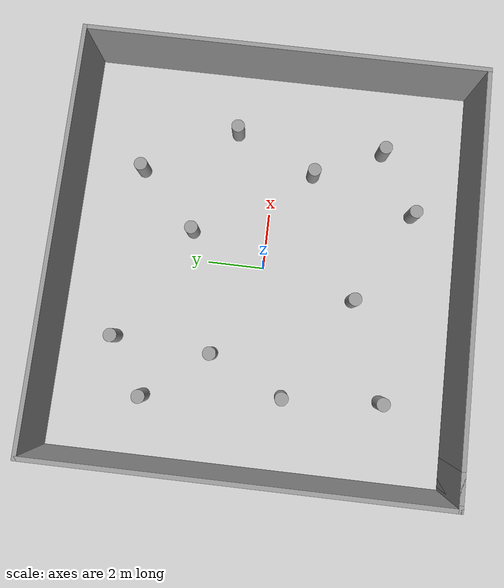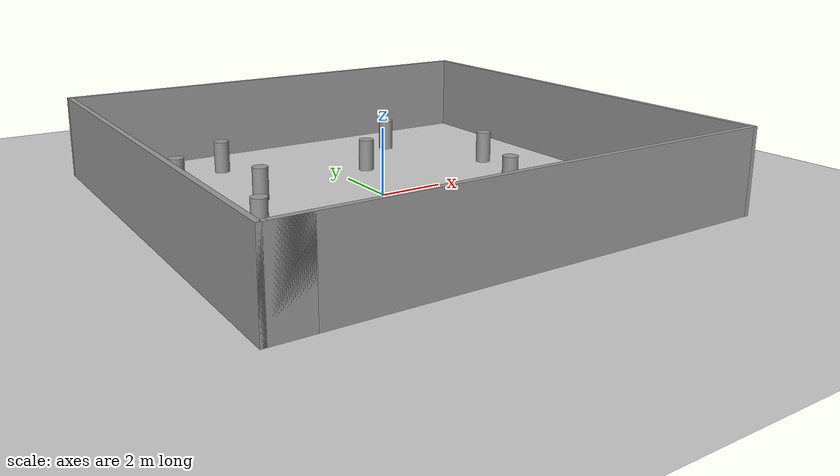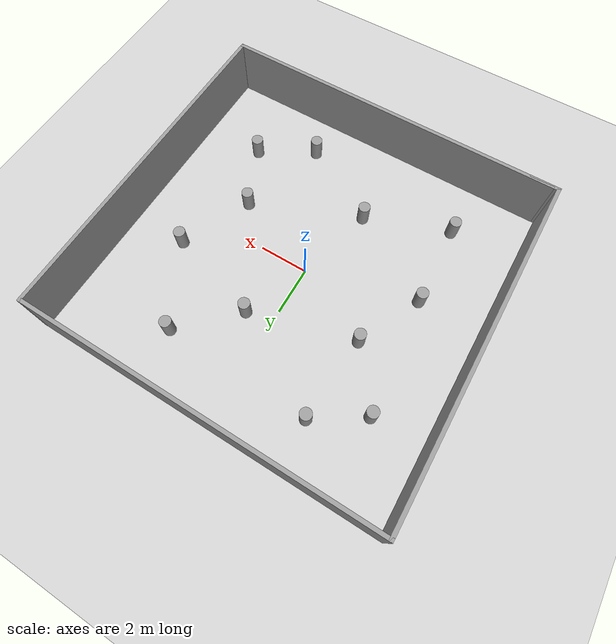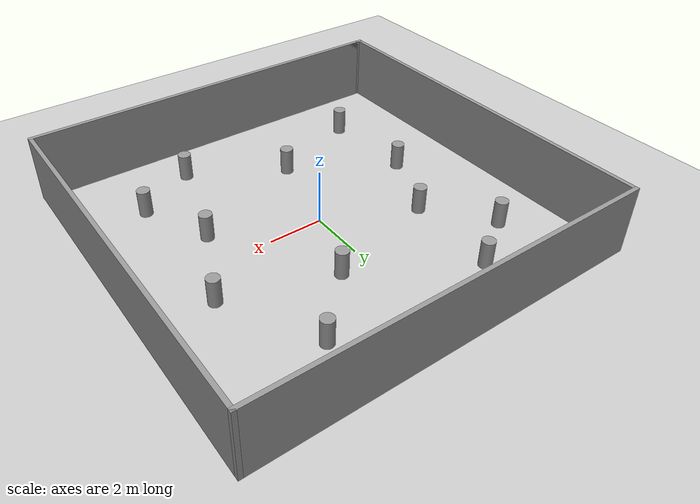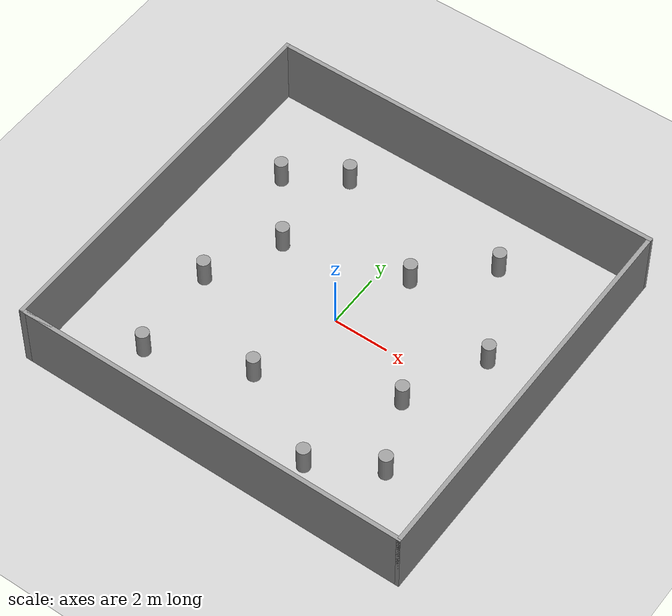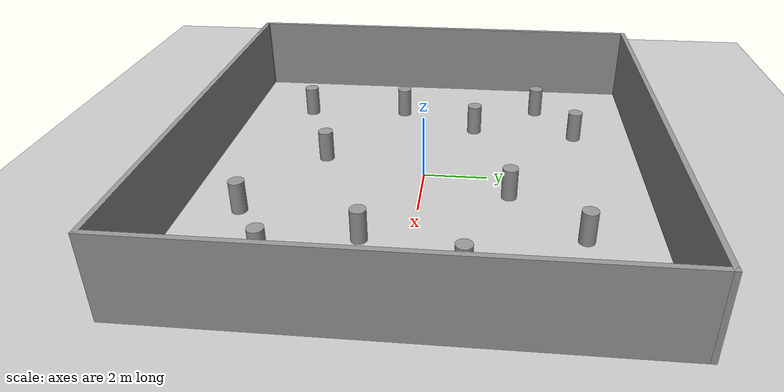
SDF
<sdf version="1.6">
 <world name="default">
  <light name="sun" type="directional">
   <pose>0 0 10 0 -0 0</pose>
   <diffuse>0.8 0.8 0.8 1</diffuse>
   <specular>0.2 0.2 0.2 1</specular>
   <attenuation>
    <range>1000</range>
    <constant>0.9</constant>
    <linear>0.01</linear>
    <quadratic>0.001</quadratic>
   </attenuation>
   <direction>-0.5 0.1 -0.9</direction>
  </light>
  <model name="ground_plane">
   <static>1</static>
   <link name="link">
    <collision name="collision">
     <geometry><plane><normal>0 0 1</normal><size>100 100</size></plane></geometry>
     <surface>
      <contact><collide_bitmask>65535</collide_bitmask></contact>
      <friction><ode><mu>100</mu><mu2>50</mu2></ode></friction>
     </surface>
    </collision>
    <visual name="visual">
     <cast_shadows>0</cast_shadows>
     <geometry><plane><normal>0 0 1</normal><size>100 100</size></plane></geometry>
     <material>
      <script><uri>file://media/materials/scripts/gazebo.material</uri><name>Gazebo/Grey</name></script>
     </material>
    </visual>
   </link>
  </model>
  <gravity>0 0 -40.8</gravity>
  <magnetic_field>6e-06 2.3e-05 -4.2e-05</magnetic_field>
  <atmosphere type="adiabatic"/>
  <physics name="default_physics" default="0" type="ode">
   <max_step_size>0.005</max_step_size>
   <real_time_factor>1</real_time_factor>
   <real_time_update_rate>0000</real_time_update_rate>
  </physics>
  <scene><ambient>0.4 0.4 0.4 1</ambient><background>0.7 0.7 0.7 1</background><shadows>1</shadows></scene>
  <audio><device>default</device></audio>
  <spherical_coordinates>
   <surface_model>EARTH_WGS84</surface_model>
   <latitude_deg>0</latitude_deg>
   <longitude_deg>0</longitude_deg>
   <elevation>0</elevation>
   <heading_deg>0</heading_deg>
  </spherical_coordinates>
  <model name="7x7">
   <pose>0.115762 0.038207 0 0 -0 0</pose>
   <link name="Wall_0">
    <collision name="Wall_0_Collision">
     <geometry><box><size>14.25 0.15 2.5</size></box></geometry>
     <pose>0 0 1.25 0 -0 0</pose>
    </collision>
    <visual name="Wall_0_Visual">
     <pose>0 0 1.25 0 -0 0</pose>
     <geometry><box><size>14.25 0.15 2.5</size></box></geometry>
     <material>
      <script><uri>file://media/materials/scripts/gazebo.material</uri><name>Gazebo/Grey</name></script>
      <ambient>1 1 1 1</ambient>
     </material>
     <meta><layer>0</layer></meta>
    </visual>
    <pose>0.125 -6.925 0 0 -0 0</pose>
   </link>
   <link name="Wall_1">
    <collision name="Wall_1_Collision">
     <geometry><box><size>14 0.15 2.5</size></box></geometry>
     <pose>0 0 1.25 0 -0 0</pose>
    </collision>
    <visual name="Wall_1_Visual">
     <pose>0 0 1.25 0 -0 0</pose>
     <geometry><box><size>14 0.15 2.5</size></box></geometry>
     <material>
      <script><uri>file://media/materials/scripts/gazebo.material</uri><name>Gazebo/Grey</name></script>
      <ambient>1 1 1 1</ambient>
     </material>
     <meta><layer>0</layer></meta>
    </visual>
    <pose>7.175 0 0 0 -0 1.5708</pose>
   </link>
   <link name="Wall_2">
    <collision name="Wall_2_Collision">
     <geometry><box><size>14.5 0.15 2.5</size></box></geometry>
     <pose>0 0 1.25 0 -0 0</pose>
    </collision>
    <visual name="Wall_2_Visual">
     <pose>0 0 1.25 0 -0 0</pose>
     <geometry><box><size>14.5 0.15 2.5</size></box></geometry>
     <material>
      <script><uri>file://media/materials/scripts/gazebo.material</uri><name>Gazebo/Grey</name></script>
      <ambient>1 1 1 1</ambient>
     </material>
     <meta><layer>0</layer></meta>
    </visual>
    <pose>-0 6.925 0 0 -0 3.14159</pose>
   </link>
   <link name="Wall_3">
    <collision name="Wall_3_Collision">
     <geometry><box><size>14 0.15 2.5</size></box></geometry>
     <pose>0 0 1.25 0 -0 0</pose>
    </collision>
    <visual name="Wall_3_Visual">
     <pose>0 0 1.25 0 -0 0</pose>
     <geometry><box><size>14 0.15 2.5</size></box></geometry>
     <material>
      <script><uri>file://media/materials/scripts/gazebo.material</uri><name>Gazebo/Grey</name></script>
      <ambient>1 1 1 1</ambient>
     </material>
     <meta><layer>0</layer></meta>
    </visual>
    <pose>-7.175 0 0 0 -0 -1.5708</pose>
   </link>
   <link name="Wall_4">
    <collision name="Wall_4_Collision">
     <geometry><box><size>1.25 0.15 2.5</size></box></geometry>
     <pose>0 0 1.25 0 -0 0</pose>
    </collision>
    <visual name="Wall_4_Visual">
     <pose>0 0 1.25 0 -0 0</pose>
     <geometry><box><size>1.25 0.15 2.5</size></box></geometry>
     <material>
      <script><uri>file://media/materials/scripts/gazebo.material</uri><name>Gazebo/Grey</name></script>
      <ambient>1 1 1 1</ambient>
     </material>
     <meta><layer>0</layer></meta>
    </visual>
    <pose>-6.625 -6.925 0 0 -0 0</pose>
   </link>
   <static>1</static>
  </model>
  <model name="zylinder">
   <link name="link_0">
    <inertial>
     <mass>0.223602</mass>
     <inertia>
      <ixx>0.0217583</ixx>
      <ixy>0</ixy>
      <ixz>0</ixz>
      <iyy>0.0217583</iyy>
      <iyz>0</iyz>
      <izz>0.00624957</izz>
     </inertia>
    </inertial>
    <pose>-1e-06 5e-06 0 0 -0 0</pose>
    <visual name="visual">
     <geometry><cylinder><radius>0.23643</radius><length>1</length></cylinder></geometry>
     <material>
      <lighting>1</lighting>
      <script><uri>file://media/materials/scripts/gazebo.material</uri><name>Gazebo/Grey</name></script>
     </material>
    </visual>
    <collision name="collision">
     <geometry><cylinder><radius>0.23643</radius><length>1</length></cylinder></geometry>
     <surface>
      <friction>
       <ode><mu>1</mu><mu2>1</mu2><fdir1>0 0 0</fdir1><slip1>0</slip1><slip2>0</slip2></ode>
       <torsional>
        <coefficient>1</coefficient>
        <patch_radius>0</patch_radius>
        <surface_radius>0</surface_radius>
        <use_patch_radius>1</use_patch_radius>
        <ode><slip>0</slip></ode>
       </torsional>
      </friction>
      <bounce><restitution_coefficient>0</restitution_coefficient><threshold>1e+06</threshold></bounce>
      <contact>
       <collide_without_contact>0</collide_without_contact>
       <collide_without_contact_bitmask>1</collide_without_contact_bitmask>
       <collide_bitmask>1</collide_bitmask>
       <ode>
        <soft_cfm>0</soft_cfm>
        <soft_erp>0.2</soft_erp>
        <kp>1e+13</kp>
        <kd>1</kd>
        <max_vel>0.01</max_vel>
        <min_depth>0</min_depth>
       </ode>
       <bullet>
        <split_impulse>1</split_impulse>
        <split_impulse_penetration_threshold>-0.01</split_impulse_penetration_threshold>
        <soft_cfm>0</soft_cfm>
        <soft_erp>0.2</soft_erp>
        <kp>1e+13</kp>
        <kd>1</kd>
       </bullet>
      </contact>
     </surface>
    </collision>
   </link>
   <static>0</static>
   <pose>-3.22342 1.49146 0.499991 0 -0 0</pose>
  </model>
  <model name="zylinder_0">
   <link name="link_0">
    <inertial>
     <mass>0.223602</mass>
     <inertia>
      <ixx>0.0217583</ixx>
      <ixy>0</ixy>
      <ixz>0</ixz>
      <iyy>0.0217583</iyy>
      <iyz>0</iyz>
      <izz>0.00624957</izz>
     </inertia>
    </inertial>
    <pose>-1e-06 5e-06 0 0 -0 0</pose>
    <visual name="visual">
     <geometry><cylinder><radius>0.23643</radius><length>1</length></cylinder></geometry>
     <material>
      <lighting>1</lighting>
      <script><uri>file://media/materials/scripts/gazebo.material</uri><name>Gazebo/Grey</name></script>
     </material>
    </visual>
    <collision name="collision">
     <geometry><cylinder><radius>0.23643</radius><length>1</length></cylinder></geometry>
     <surface>
      <friction>
       <ode><mu>1</mu><mu2>1</mu2><fdir1>0 0 0</fdir1><slip1>0</slip1><slip2>0</slip2></ode>
       <torsional>
        <coefficient>1</coefficient>
        <patch_radius>0</patch_radius>
        <surface_radius>0</surface_radius>
        <use_patch_radius>1</use_patch_radius>
        <ode><slip>0</slip></ode>
       </torsional>
      </friction>
      <bounce><restitution_coefficient>0</restitution_coefficient><threshold>1e+06</threshold></bounce>
      <contact>
       <collide_without_contact>0</collide_without_contact>
       <collide_without_contact_bitmask>1</collide_without_contact_bitmask>
       <collide_bitmask>1</collide_bitmask>
       <ode>
        <soft_cfm>0</soft_cfm>
        <soft_erp>0.2</soft_erp>
        <kp>1e+13</kp>
        <kd>1</kd>
        <max_vel>0.01</max_vel>
        <min_depth>0</min_depth>
       </ode>
       <bullet>
        <split_impulse>1</split_impulse>
        <split_impulse_penetration_threshold>-0.01</split_impulse_penetration_threshold>
        <soft_cfm>0</soft_cfm>
        <soft_erp>0.2</soft_erp>
        <kp>1e+13</kp>
        <kd>1</kd>
       </bullet>
      </contact>
     </surface>
    </collision>
   </link>
   <static>0</static>
   <pose>-4.45517 -1.12882 0.5 0 -0 0</pose>
  </model>
  <model name="zylinder_1">
   <link name="link_0">
    <inertial>
     <mass>0.223602</mass>
     <inertia>
      <ixx>0.0217583</ixx>
      <ixy>0</ixy>
      <ixz>0</ixz>
      <iyy>0.0217583</iyy>
      <iyz>0</iyz>
      <izz>0.00624957</izz>
     </inertia>
    </inertial>
    <pose>-1e-06 5e-06 0 0 -0 0</pose>
    <visual name="visual">
     <geometry><cylinder><radius>0.23643</radius><length>1</length></cylinder></geometry>
     <material>
      <lighting>1</lighting>
      <script><uri>file://media/materials/scripts/gazebo.material</uri><name>Gazebo/Grey</name></script>
     </material>
    </visual>
    <collision name="collision">
     <geometry><cylinder><radius>0.23643</radius><length>1</length></cylinder></geometry>
     <surface>
      <friction>
       <ode><mu>1</mu><mu2>1</mu2><fdir1>0 0 0</fdir1><slip1>0</slip1><slip2>0</slip2></ode>
       <torsional>
        <coefficient>1</coefficient>
        <patch_radius>0</patch_radius>
        <surface_radius>0</surface_radius>
        <use_patch_radius>1</use_patch_radius>
        <ode><slip>0</slip></ode>
       </torsional>
      </friction>
      <bounce><restitution_coefficient>0</restitution_coefficient><threshold>1e+06</threshold></bounce>
      <contact>
       <collide_without_contact>0</collide_without_contact>
       <collide_without_contact_bitmask>1</collide_without_contact_bitmask>
       <collide_bitmask>1</collide_bitmask>
       <ode>
        <soft_cfm>0</soft_cfm>
        <soft_erp>0.2</soft_erp>
        <kp>1e+13</kp>
        <kd>1</kd>
        <max_vel>0.01</max_vel>
        <min_depth>0</min_depth>
       </ode>
       <bullet>
        <split_impulse>1</split_impulse>
        <split_impulse_penetration_threshold>-0.01</split_impulse_penetration_threshold>
        <soft_cfm>0</soft_cfm>
        <soft_erp>0.2</soft_erp>
        <kp>1e+13</kp>
        <kd>1</kd>
       </bullet>
      </contact>
     </surface>
    </collision>
   </link>
   <static>0</static>
   <pose>-0.81902 -3.28773 0.499991 0 -0 0</pose>
  </model>
  <model name="zylinder_2">
   <link name="link_0">
    <inertial>
     <mass>0.223602</mass>
     <inertia>
      <ixx>0.0217583</ixx>
      <ixy>0</ixy>
      <ixz>0</ixz>
      <iyy>0.0217583</iyy>
      <iyz>0</iyz>
      <izz>0.00624957</izz>
     </inertia>
    </inertial>
    <pose>-1e-06 5e-06 0 0 -0 0</pose>
    <visual name="visual">
     <geometry><cylinder><radius>0.23643</radius><length>1</length></cylinder></geometry>
     <material>
      <lighting>1</lighting>
      <script><uri>file://media/materials/scripts/gazebo.material</uri><name>Gazebo/Grey</name></script>
     </material>
    </visual>
    <collision name="collision">
     <geometry><cylinder><radius>0.23643</radius><length>1</length></cylinder></geometry>
     <surface>
      <friction>
       <ode><mu>1</mu><mu2>1</mu2><fdir1>0 0 0</fdir1><slip1>0</slip1><slip2>0</slip2></ode>
       <torsional>
        <coefficient>1</coefficient>
        <patch_radius>0</patch_radius>
        <surface_radius>0</surface_radius>
        <use_patch_radius>1</use_patch_radius>
        <ode><slip>0</slip></ode>
       </torsional>
      </friction>
      <bounce><restitution_coefficient>0</restitution_coefficient><threshold>1e+06</threshold></bounce>
      <contact>
       <collide_without_contact>0</collide_without_contact>
       <collide_without_contact_bitmask>1</collide_without_contact_bitmask>
       <collide_bitmask>1</collide_bitmask>
       <ode>
        <soft_cfm>0</soft_cfm>
        <soft_erp>0.2</soft_erp>
        <kp>1e+13</kp>
        <kd>1</kd>
        <max_vel>0.01</max_vel>
        <min_depth>0</min_depth>
       </ode>
       <bullet>
        <split_impulse>1</split_impulse>
        <split_impulse_penetration_threshold>-0.01</split_impulse_penetration_threshold>
        <soft_cfm>0</soft_cfm>
        <soft_erp>0.2</soft_erp>
        <kp>1e+13</kp>
        <kd>1</kd>
       </bullet>
      </contact>
     </surface>
    </collision>
   </link>
   <static>0</static>
   <pose>2.50245 -5.14373 0.5 0 -0 0</pose>
  </model>
  <model name="zylinder_3">
   <link name="link_0">
    <inertial>
     <mass>0.223602</mass>
     <inertia>
      <ixx>0.0217583</ixx>
      <ixy>0</ixy>
      <ixz>0</ixz>
      <iyy>0.0217583</iyy>
      <iyz>0</iyz>
      <izz>0.00624957</izz>
     </inertia>
    </inertial>
    <pose>-1e-06 5e-06 0 0 -0 0</pose>
    <visual name="visual">
     <geometry><cylinder><radius>0.23643</radius><length>1</length></cylinder></geometry>
     <material>
      <lighting>1</lighting>
      <script><uri>file://media/materials/scripts/gazebo.material</uri><name>Gazebo/Grey</name></script>
     </material>
    </visual>
    <collision name="collision">
     <geometry><cylinder><radius>0.23643</radius><length>1</length></cylinder></geometry>
     <surface>
      <friction>
       <ode><mu>1</mu><mu2>1</mu2><fdir1>0 0 0</fdir1><slip1>0</slip1><slip2>0</slip2></ode>
       <torsional>
        <coefficient>1</coefficient>
        <patch_radius>0</patch_radius>
        <surface_radius>0</surface_radius>
        <use_patch_radius>1</use_patch_radius>
        <ode><slip>0</slip></ode>
       </torsional>
      </friction>
      <bounce><restitution_coefficient>0</restitution_coefficient><threshold>1e+06</threshold></bounce>
      <contact>
       <collide_without_contact>0</collide_without_contact>
       <collide_without_contact_bitmask>1</collide_without_contact_bitmask>
       <collide_bitmask>1</collide_bitmask>
       <ode>
        <soft_cfm>0</soft_cfm>
        <soft_erp>0.2</soft_erp>
        <kp>1e+13</kp>
        <kd>1</kd>
        <max_vel>0.01</max_vel>
        <min_depth>0</min_depth>
       </ode>
       <bullet>
        <split_impulse>1</split_impulse>
        <split_impulse_penetration_threshold>-0.01</split_impulse_penetration_threshold>
        <soft_cfm>0</soft_cfm>
        <soft_erp>0.2</soft_erp>
        <kp>1e+13</kp>
        <kd>1</kd>
       </bullet>
      </contact>
     </surface>
    </collision>
   </link>
   <static>0</static>
   <pose>-2.98655 4.94659 0.499991 0 -0 0</pose>
  </model>
  <model name="zylinder_4">
   <link name="link_0">
    <inertial>
     <mass>0.223602</mass>
     <inertia>
      <ixx>0.0217583</ixx>
      <ixy>0</ixy>
      <ixz>0</ixz>
      <iyy>0.0217583</iyy>
      <iyz>0</iyz>
      <izz>0.00624957</izz>
     </inertia>
    </inertial>
    <pose>-1e-06 5e-06 0 0 -0 0</pose>
    <visual name="visual">
     <geometry><cylinder><radius>0.23643</radius><length>1</length></cylinder></geometry>
     <material>
      <lighting>1</lighting>
      <script><uri>file://media/materials/scripts/gazebo.material</uri><name>Gazebo/Grey</name></script>
     </material>
    </visual>
    <collision name="collision">
     <geometry><cylinder><radius>0.23643</radius><length>1</length></cylinder></geometry>
     <surface>
      <friction>
       <ode><mu>1</mu><mu2>1</mu2><fdir1>0 0 0</fdir1><slip1>0</slip1><slip2>0</slip2></ode>
       <torsional>
        <coefficient>1</coefficient>
        <patch_radius>0</patch_radius>
        <surface_radius>0</surface_radius>
        <use_patch_radius>1</use_patch_radius>
        <ode><slip>0</slip></ode>
       </torsional>
      </friction>
      <bounce><restitution_coefficient>0</restitution_coefficient><threshold>1e+06</threshold></bounce>
      <contact>
       <collide_without_contact>0</collide_without_contact>
       <collide_without_contact_bitmask>1</collide_without_contact_bitmask>
       <collide_bitmask>1</collide_bitmask>
       <ode>
        <soft_cfm>0</soft_cfm>
        <soft_erp>0.2</soft_erp>
        <kp>1e+13</kp>
        <kd>1</kd>
        <max_vel>0.01</max_vel>
        <min_depth>0</min_depth>
       </ode>
       <bullet>
        <split_impulse>1</split_impulse>
        <split_impulse_penetration_threshold>-0.01</split_impulse_penetration_threshold>
        <soft_cfm>0</soft_cfm>
        <soft_erp>0.2</soft_erp>
        <kp>1e+13</kp>
        <kd>1</kd>
       </bullet>
      </contact>
     </surface>
    </collision>
   </link>
   <static>0</static>
   <pose>3.12821 4.75191 0.5 0 -0 0</pose>
  </model>
  <model name="zylinder_5">
   <link name="link_0">
    <inertial>
     <mass>0.223602</mass>
     <inertia>
      <ixx>0.0217583</ixx>
      <ixy>0</ixy>
      <ixz>0</ixz>
      <iyy>0.0217583</iyy>
      <iyz>0</iyz>
      <izz>0.00624957</izz>
     </inertia>
    </inertial>
    <pose>-1e-06 5e-06 0 0 -0 0</pose>
    <visual name="visual">
     <geometry><cylinder><radius>0.23643</radius><length>1</length></cylinder></geometry>
     <material>
      <lighting>1</lighting>
      <script><uri>file://media/materials/scripts/gazebo.material</uri><name>Gazebo/Grey</name></script>
     </material>
    </visual>
    <collision name="collision">
     <geometry><cylinder><radius>0.23643</radius><length>1</length></cylinder></geometry>
     <surface>
      <friction>
       <ode><mu>1</mu><mu2>1</mu2><fdir1>0 0 0</fdir1><slip1>0</slip1><slip2>0</slip2></ode>
       <torsional>
        <coefficient>1</coefficient>
        <patch_radius>0</patch_radius>
        <surface_radius>0</surface_radius>
        <use_patch_radius>1</use_patch_radius>
        <ode><slip>0</slip></ode>
       </torsional>
      </friction>
      <bounce><restitution_coefficient>0</restitution_coefficient><threshold>1e+06</threshold></bounce>
      <contact>
       <collide_without_contact>0</collide_without_contact>
       <collide_without_contact_bitmask>1</collide_without_contact_bitmask>
       <collide_bitmask>1</collide_bitmask>
       <ode>
        <soft_cfm>0</soft_cfm>
        <soft_erp>0.2</soft_erp>
        <kp>1e+13</kp>
        <kd>1</kd>
        <max_vel>0.01</max_vel>
        <min_depth>0</min_depth>
       </ode>
       <bullet>
        <split_impulse>1</split_impulse>
        <split_impulse_penetration_threshold>-0.01</split_impulse_penetration_threshold>
        <soft_cfm>0</soft_cfm>
        <soft_erp>0.2</soft_erp>
        <kp>1e+13</kp>
        <kd>1</kd>
       </bullet>
      </contact>
     </surface>
    </collision>
   </link>
   <static>0</static>
   <pose>1.05211 2.6722 0.499991 0 -0 0</pose>
  </model>
  <model name="zylinder_6">
   <link name="link_0">
    <inertial>
     <mass>0.223602</mass>
     <inertia>
      <ixx>0.0217583</ixx>
      <ixy>0</ixy>
      <ixz>0</ixz>
      <iyy>0.0217583</iyy>
      <iyz>0</iyz>
      <izz>0.00624957</izz>
     </inertia>
    </inertial>
    <pose>-1e-06 5e-06 0 0 -0 0</pose>
    <visual name="visual">
     <geometry><cylinder><radius>0.23643</radius><length>1</length></cylinder></geometry>
     <material>
      <lighting>1</lighting>
      <script><uri>file://media/materials/scripts/gazebo.material</uri><name>Gazebo/Grey</name></script>
     </material>
    </visual>
    <collision name="collision">
     <geometry><cylinder><radius>0.23643</radius><length>1</length></cylinder></geometry>
     <surface>
      <friction>
       <ode><mu>1</mu><mu2>1</mu2><fdir1>0 0 0</fdir1><slip1>0</slip1><slip2>0</slip2></ode>
       <torsional>
        <coefficient>1</coefficient>
        <patch_radius>0</patch_radius>
        <surface_radius>0</surface_radius>
        <use_patch_radius>1</use_patch_radius>
        <ode><slip>0</slip></ode>
       </torsional>
      </friction>
      <bounce><restitution_coefficient>0</restitution_coefficient><threshold>1e+06</threshold></bounce>
      <contact>
       <collide_without_contact>0</collide_without_contact>
       <collide_without_contact_bitmask>1</collide_without_contact_bitmask>
       <collide_bitmask>1</collide_bitmask>
       <ode>
        <soft_cfm>0</soft_cfm>
        <soft_erp>0.2</soft_erp>
        <kp>1e+13</kp>
        <kd>1</kd>
        <max_vel>0.01</max_vel>
        <min_depth>0</min_depth>
       </ode>
       <bullet>
        <split_impulse>1</split_impulse>
        <split_impulse_penetration_threshold>-0.01</split_impulse_penetration_threshold>
        <soft_cfm>0</soft_cfm>
        <soft_erp>0.2</soft_erp>
        <kp>1e+13</kp>
        <kd>1</kd>
       </bullet>
      </contact>
     </surface>
    </collision>
   </link>
   <static>0</static>
   <pose>3.60972 -1.43027 0.5 0 -0 0</pose>
  </model>
  <model name="zylinder_7">
   <link name="link_0">
    <inertial>
     <mass>0.223602</mass>
     <inertia>
      <ixx>0.0217583</ixx>
      <ixy>0</ixy>
      <ixz>0</ixz>
      <iyy>0.0217583</iyy>
      <iyz>0</iyz>
      <izz>0.00624957</izz>
     </inertia>
    </inertial>
    <pose>-1e-06 5e-06 0 0 -0 0</pose>
    <visual name="visual">
     <geometry><cylinder><radius>0.23643</radius><length>1</length></cylinder></geometry>
     <material>
      <lighting>1</lighting>
      <script><uri>file://media/materials/scripts/gazebo.material</uri><name>Gazebo/Grey</name></script>
     </material>
    </visual>
    <collision name="collision">
     <geometry><cylinder><radius>0.23643</radius><length>1</length></cylinder></geometry>
     <surface>
      <friction>
       <ode><mu>1</mu><mu2>1</mu2><fdir1>0 0 0</fdir1><slip1>0</slip1><slip2>0</slip2></ode>
       <torsional>
        <coefficient>1</coefficient>
        <patch_radius>0</patch_radius>
        <surface_radius>0</surface_radius>
        <use_patch_radius>1</use_patch_radius>
        <ode><slip>0</slip></ode>
       </torsional>
      </friction>
      <bounce><restitution_coefficient>0</restitution_coefficient><threshold>1e+06</threshold></bounce>
      <contact>
       <collide_without_contact>0</collide_without_contact>
       <collide_without_contact_bitmask>1</collide_without_contact_bitmask>
       <collide_bitmask>1</collide_bitmask>
       <ode>
        <soft_cfm>0</soft_cfm>
        <soft_erp>0.2</soft_erp>
        <kp>1e+13</kp>
        <kd>1</kd>
        <max_vel>0.01</max_vel>
        <min_depth>0</min_depth>
       </ode>
       <bullet>
        <split_impulse>1</split_impulse>
        <split_impulse_penetration_threshold>-0.01</split_impulse_penetration_threshold>
        <soft_cfm>0</soft_cfm>
        <soft_erp>0.2</soft_erp>
        <kp>1e+13</kp>
        <kd>1</kd>
       </bullet>
      </contact>
     </surface>
    </collision>
   </link>
   <static>0</static>
   <pose>-4.25255 -4.56088 0.499991 0 -0 0</pose>
  </model>
  <model name="zylinder_8">
   <link name="link_0">
    <inertial>
     <mass>0.223602</mass>
     <inertia>
      <ixx>0.0217583</ixx>
      <ixy>0</ixy>
      <ixz>0</ixz>
      <iyy>0.0217583</iyy>
      <iyz>0</iyz>
      <izz>0.00624957</izz>
     </inertia>
    </inertial>
    <pose>-1e-06 5e-06 0 0 -0 0</pose>
    <visual name="visual">
     <geometry><cylinder><radius>0.23643</radius><length>1</length></cylinder></geometry>
     <material>
      <lighting>1</lighting>
      <script><uri>file://media/materials/scripts/gazebo.material</uri><name>Gazebo/Grey</name></script>
     </material>
    </visual>
    <collision name="collision">
     <geometry><cylinder><radius>0.23643</radius><length>1</length></cylinder></geometry>
     <surface>
      <friction>
       <ode><mu>1</mu><mu2>1</mu2><fdir1>0 0 0</fdir1><slip1>0</slip1><slip2>0</slip2></ode>
       <torsional>
        <coefficient>1</coefficient>
        <patch_radius>0</patch_radius>
        <surface_radius>0</surface_radius>
        <use_patch_radius>1</use_patch_radius>
        <ode><slip>0</slip></ode>
       </torsional>
      </friction>
      <bounce><restitution_coefficient>0</restitution_coefficient><threshold>1e+06</threshold></bounce>
      <contact>
       <collide_without_contact>0</collide_without_contact>
       <collide_without_contact_bitmask>1</collide_without_contact_bitmask>
       <collide_bitmask>1</collide_bitmask>
       <ode>
        <soft_cfm>0</soft_cfm>
        <soft_erp>0.2</soft_erp>
        <kp>1e+13</kp>
        <kd>1</kd>
        <max_vel>0.01</max_vel>
        <min_depth>0</min_depth>
       </ode>
       <bullet>
        <split_impulse>1</split_impulse>
        <split_impulse_penetration_threshold>-0.01</split_impulse_penetration_threshold>
        <soft_cfm>0</soft_cfm>
        <soft_erp>0.2</soft_erp>
        <kp>1e+13</kp>
        <kd>1</kd>
       </bullet>
      </contact>
     </surface>
    </collision>
   </link>
   <static>0</static>
   <pose>4.91027 1.4713 0.5 0 -0 0</pose>
  </model>
  <model name="zylinder_9">
   <link name="link_0">
    <inertial>
     <mass>0.223602</mass>
     <inertia>
      <ixx>0.0217583</ixx>
      <ixy>0</ixy>
      <ixz>0</ixz>
      <iyy>0.0217583</iyy>
      <iyz>0</iyz>
      <izz>0.00624957</izz>
     </inertia>
    </inertial>
    <pose>-1e-06 5e-06 0 0 -0 0</pose>
    <visual name="visual">
     <geometry><cylinder><radius>0.23643</radius><length>1</length></cylinder></geometry>
     <material>
      <lighting>1</lighting>
      <script><uri>file://media/materials/scripts/gazebo.material</uri><name>Gazebo/Grey</name></script>
     </material>
    </visual>
    <collision name="collision">
     <geometry><cylinder><radius>0.23643</radius><length>1</length></cylinder></geometry>
     <surface>
      <friction>
       <ode><mu>1</mu><mu2>1</mu2><fdir1>0 0 0</fdir1><slip1>0</slip1><slip2>0</slip2></ode>
       <torsional>
        <coefficient>1</coefficient>
        <patch_radius>0</patch_radius>
        <surface_radius>0</surface_radius>
        <use_patch_radius>1</use_patch_radius>
        <ode><slip>0</slip></ode>
       </torsional>
      </friction>
      <bounce><restitution_coefficient>0</restitution_coefficient><threshold>1e+06</threshold></bounce>
      <contact>
       <collide_without_contact>0</collide_without_contact>
       <collide_without_contact_bitmask>1</collide_without_contact_bitmask>
       <collide_bitmask>1</collide_bitmask>
       <ode>
        <soft_cfm>0</soft_cfm>
        <soft_erp>0.2</soft_erp>
        <kp>1e+13</kp>
        <kd>1</kd>
        <max_vel>0.01</max_vel>
        <min_depth>0</min_depth>
       </ode>
       <bullet>
        <split_impulse>1</split_impulse>
        <split_impulse_penetration_threshold>-0.01</split_impulse_penetration_threshold>
        <soft_cfm>0</soft_cfm>
        <soft_erp>0.2</soft_erp>
        <kp>1e+13</kp>
        <kd>1</kd>
       </bullet>
      </contact>
     </surface>
    </collision>
   </link>
   <static>0</static>
   <pose>4.7119 -3.8816 0.5 0 -0 0</pose>
  </model>
  <model name="zylinder_10">
   <link name="link_0">
    <inertial>
     <mass>0.223602</mass>
     <inertia>
      <ixx>0.0217583</ixx>
      <ixy>0</ixy>
      <ixz>0</ixz>
      <iyy>0.0217583</iyy>
      <iyz>0</iyz>
      <izz>0.00624957</izz>
     </inertia>
    </inertial>
    <pose>-1e-06 5e-06 0 0 -0 0</pose>
    <visual name="visual">
     <geometry><cylinder><radius>0.23643</radius><length>1</length></cylinder></geometry>
     <material>
      <lighting>1</lighting>
      <script><uri>file://media/materials/scripts/gazebo.material</uri><name>Gazebo/Grey</name></script>
     </material>
    </visual>
    <collision name="collision">
     <geometry><cylinder><radius>0.23643</radius><length>1</length></cylinder></geometry>
     <surface>
      <friction>
       <ode><mu>1</mu><mu2>1</mu2><fdir1>0 0 0</fdir1><slip1>0</slip1><slip2>0</slip2></ode>
       <torsional>
        <coefficient>1</coefficient>
        <patch_radius>0</patch_radius>
        <surface_radius>0</surface_radius>
        <use_patch_radius>1</use_patch_radius>
        <ode><slip>0</slip></ode>
       </torsional>
      </friction>
      <bounce><restitution_coefficient>0</restitution_coefficient><threshold>1e+06</threshold></bounce>
      <contact>
       <collide_without_contact>0</collide_without_contact>
       <collide_without_contact_bitmask>1</collide_without_contact_bitmask>
       <collide_bitmask>1</collide_bitmask>
       <ode>
        <soft_cfm>0</soft_cfm>
        <soft_erp>0.2</soft_erp>
        <kp>1e+13</kp>
        <kd>1</kd>
        <max_vel>0.01</max_vel>
        <min_depth>0</min_depth>
       </ode>
       <bullet>
        <split_impulse>1</split_impulse>
        <split_impulse_penetration_threshold>-0.01</split_impulse_penetration_threshold>
        <soft_cfm>0</soft_cfm>
        <soft_erp>0.2</soft_erp>
        <kp>1e+13</kp>
        <kd>1</kd>
       </bullet>
      </contact>
     </surface>
    </collision>
   </link>
   <static>0</static>
   <pose>-4.91926 3.70312 0.499991 0 -0 0</pose>
  </model>
 </world>
</sdf>
